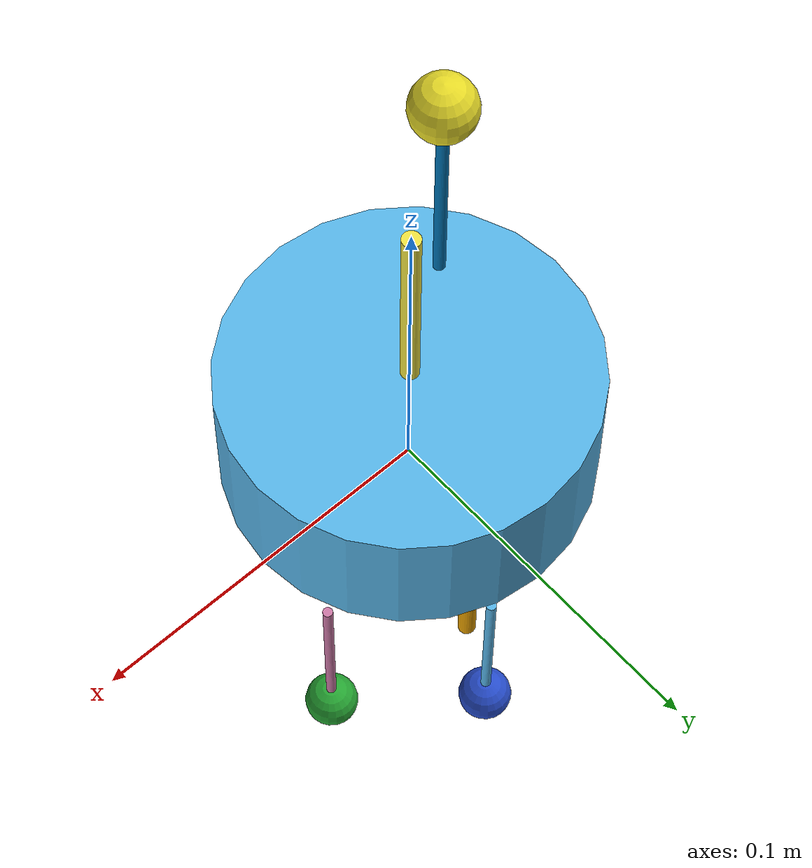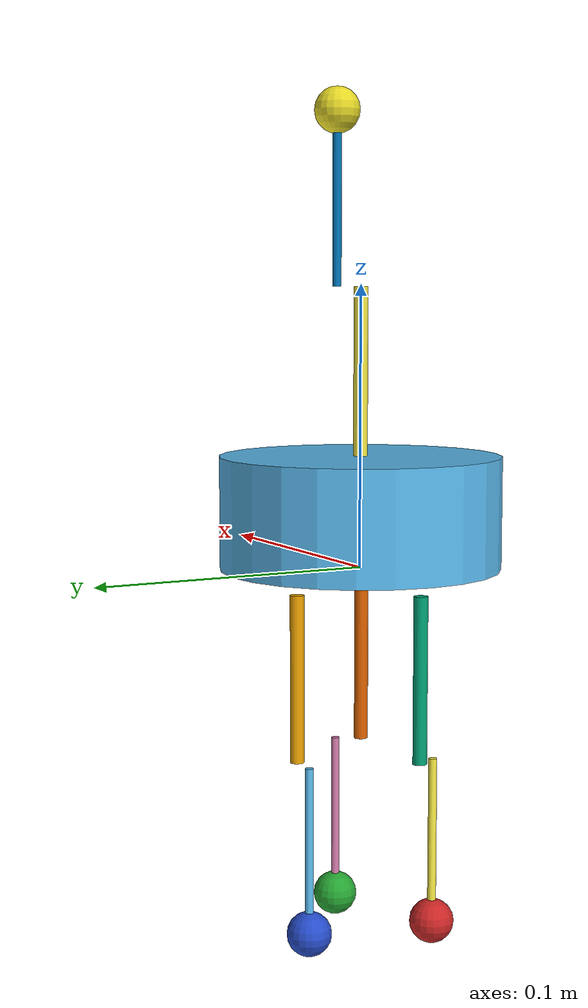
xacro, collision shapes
<?xml version="1.0"?>
<robot xmlns:xacro="http://www.ros.org/wiki/xacro" name="gurdy">

    <!-- Properties -->

    <xacro:property name="foot_kp" value="1000.0"/>
	<xacro:property name="foot_kd" value="1000.0"/>
	<xacro:property name="foot_mu1" value="10.0"/>
    <xacro:property name="foot_mu2" value="10.0"/>
    <xacro:property name="foot_radius" value="0.008"/>

    <!-- Head XACRO -->
    <xacro:macro name="gurdy_head" params="">

        <link name="base_link">
            <collision>
                <origin xyz="0 0 0" rpy="0 0 0"/>
                <geometry>
                    <box size="0.01 0.01 0.01"/>
                </geometry>
            </collision>
            <visual>
                <origin xyz="0 0 0.01" rpy="0 0 0"/>
                <geometry>
                    <box size="0.01 0.01 0.01"/>
                </geometry>
            </visual>
        </link>

        <link name="head_link">
            <inertial>
                <origin xyz="0 0 0.02" rpy="0 0 0"/>
                <mass value="0.01" />
                <xacro:cylinder_inertia mass="0.01" r="0.05" l="0.04"/>
            </inertial>
            <collision>
                <origin xyz="0 0 0.02" rpy="0 0 0"/>
                <geometry>
                    <cylinder radius="0.05" length="0.04"/>
                </geometry>
            </collision>
            <visual>
                <origin rpy="0.0 0 0" xyz="0 0 0"/>
                <geometry>
                    <mesh filename="package://my_gurdy_description/models/gurdy/meshes/gurdy_head_v2.dae"/>
                </geometry>
            </visual>
        </link>

        <gazebo reference="head_link">
            <mu1>10.0</mu1>
            <mu2>10.0</mu2>
        </gazebo>

        <joint name="fixed" type="fixed">
            <parent link="base_link"/>
            <child link="head_link"/>
        </joint>

    </xacro:macro>

    <!-- LEG-->

    <!-- MACROS -->
    <xacro:macro name="upperleg_link" params="number">
        <link name="upperleg_M${number}_link">
     	    <inertial>
                <origin xyz="0 0 0.03" rpy="0 0 0"/>
                <mass value="0.01" />
                <xacro:cylinder_inertia mass="0.01" r="0.0025" l="0.06"/>
            </inertial>
            <collision>
                <origin xyz="0 0 0.03" rpy="0 0 0"/>
                <geometry>
                    <cylinder length="0.06" radius="0.0025"/>
                </geometry>
            </collision>
            <visual>
                <origin rpy="0.0 0 0" xyz="0 0 0"/>
                <geometry>
                    <mesh filename="package://my_gurdy_description/models/gurdy/meshes/gurdy_higherleg_v2.dae"/>
                </geometry>
            </visual>
    	</link>
    </xacro:macro>

    <xacro:macro name="lowerleg_link" params="number">
        <link name="lowerleg_M${number}_link">
     	    <inertial>
                <origin xyz="0 0 0.03" rpy="0 0 0"/>
                <mass value="0.01" />
                <xacro:cylinder_inertia mass="0.01" r="0.0015" l="0.06"/>
            </inertial>
            <collision>
                <origin xyz="0 0 0.03" rpy="0 0 0"/>
                <geometry>
                    <cylinder length="0.06" radius="0.0015"/>
                </geometry>
            </collision>
            <visual>
                <origin rpy="0.0 0 0" xyz="0 0 0"/>
                <geometry>
                    <mesh filename="package://my_gurdy_description/models/gurdy/meshes/gurdy_lowerleg_v2.dae"/>
                </geometry>
            </visual>
    	</link>
        <joint name="upperlegM${number}_lowerlegM${number}_joint" type="revolute">
        	<parent link="upperleg_M${number}_link"/>
        	<child link="lowerleg_M${number}_link"/>
            <origin xyz="0 0.0095 0.06" rpy="0 0 3.14159"/>
            <limit lower="-2.9" upper="1.5708" effort="1.0" velocity="0.005"/>
            <axis xyz="0 1 0"/>
    	</joint>
    </xacro:macro>

    <xacro:macro name="foot_link" params="number colour">
        <link name="footM${number}_link">
     	    <inertial>
                <origin xyz="0 0 0" rpy="0 0 0"/>
                <mass value="0.01" />
                <xacro:sphere_inertia mass="0.01" r="${foot_radius}"/>
            </inertial>
            <collision>
                <origin xyz="0 0 0" rpy="0 0 0"/>
                <geometry>
                    <sphere radius="${foot_radius}"/>
                </geometry>
            </collision>
            <visual>
                <origin rpy="0.0 0 0" xyz="0 0 0"/>
                <geometry>
                    <sphere radius="${foot_radius}"/>
                </geometry>
            </visual>
    	</link>
        <gazebo reference="footM${number}_link">
            <kp>${foot_kp}</kp>
            <kd>${foot_kd}</kd>
            <mu1>${foot_mu1}</mu1>
            <mu2>${foot_mu2}</mu2>
            <material>Gazebo/${colour}</material>
        </gazebo>
        <joint name="basefoot_peg_M${number}_basefoot_peg_M${number}_joint_joint" type="fixed">
            <parent link="lowerleg_M${number}_link"/>
            <child link="footM${number}_link"/>
            <origin xyz="0 0 0.06" rpy="0 0 0"/>
        </joint>
    </xacro:macro>

    <xacro:macro name="upper_transmission" params="number">
        <transmission name="tran${number}">
            <type>transmission_interface/SimpleTransmission</type>
            <joint name="head_upperlegM${number}_joint">
                <hardwareInterface>EffortJointInterface</hardwareInterface>
            </joint>
            <actuator name="motor${number}">
                <hardwareInterface>EffortJointInterface</hardwareInterface>
                <mechanicalReduction>1</mechanicalReduction>
            </actuator>
        </transmission>
    </xacro:macro>

    <xacro:macro name="lower_transmission" params="number number_transm">

        <transmission name="tran${number_transm}">
            <type>transmission_interface/SimpleTransmission</type>
            <joint name="upperlegM${number}_lowerlegM${number}_joint">
                <hardwareInterface>EffortJointInterface</hardwareInterface>
            </joint>
            <actuator name="motor${number_transm}">
                <hardwareInterface>EffortJointInterface</hardwareInterface>
                <mechanicalReduction>1</mechanicalReduction>
            </actuator>
        </transmission>
    </xacro:macro>

    <xacro:macro name="gurdy_leg" params="headlink_name number colour *origin">

        <xacro:upperleg_link number="${number}"/>
        <xacro:upper_transmission number="${number}"/>

        <joint name="head_upperlegM${number}_joint" type="revolute">
            <parent link="${headlink_name}"/>
            <child link="upperleg_M${number}_link"/>

            <xacro:insert_block name="origin" />
            <limit lower="-1.55" upper="0.0" effort="1.0" velocity="0.005"/>
            <axis xyz="0 1 0"/>
        </joint>

        <xacro:lowerleg_link number="${number}"/>
        <xacro:lower_transmission number="${number}" number_transm="${number + 4}"/>

        <xacro:foot_link number="${number}" colour="${colour}"/>

    </xacro:macro>

    <xacro:macro name="gurdy_control" params="namespace">
        <gazebo>
            <plugin name="gazebo_ros_control" filename="libgazebo_ros_control.so">
                <robotNamespace>/${namespace}</robotNamespace>
            </plugin>
        </gazebo>

        <gazebo>
            <plugin name="gazebo_ros_imu_controller" filename="libgazebo_ros_imu.so">
            <robotNamespace>/${namespace}</robotNamespace>
            <topicName>imu/data</topicName>
            <serviceName>imu/service</serviceName>
            <bodyName>base_link</bodyName>
            <gaussianNoise>0</gaussianNoise>
            <rpyOffsets>0 0 0</rpyOffsets>
            <updateRate>5.0</updateRate>
            <alwaysOn>true</alwaysOn>
            <gaussianNoise>0</gaussianNoise>
            </plugin>
        </gazebo>

    </xacro:macro>

    <!-- Math Usefull MACROS-->
    <xacro:macro  name="cylinder_inertia" params="mass r l">
      <inertia  ixx="${mass*(3*r*r+l*l)/12}" ixy = "0" ixz = "0"
                iyy="${mass*(3*r*r+l*l)/12}" iyz = "0"
                izz="${mass*(r*r)/2}" />
    </xacro:macro >

    <xacro:macro name="box_inertia" params="mass x y z">
      <inertia  ixx="${mass*(y*y+z*z)/12}" ixy = "0" ixz = "0"
                iyy="${mass*(x*x+z*z)/12}" iyz = "0"
                izz="${mass*(x*x+z*z)/12}"
      />
    </xacro:macro>

    <xacro:macro name="sphere_inertia" params="mass r">
        <inertia
            ixx="${2*mass*r*r/5}" ixy = "0" ixz = "0"
            iyy="${2*mass*r*r/5}" iyz = "0"
            izz="${2*mass*r*r/5}"
        />
    </xacro:macro>

    <xacro:gurdy_head />

    <xacro:gurdy_leg headlink_name="head_link" number="1" colour="Red">
        <origin xyz="-0.02165 -0.0125 -0.008" rpy="3.14159 0 0.523599"/>
    </xacro:gurdy_leg>

    <xacro:gurdy_leg headlink_name="head_link" number="2" colour="Green">
        <origin xyz="0.02165 -0.0125 -0.008" rpy="3.14159 0 2.61799"/>
    </xacro:gurdy_leg>

    <xacro:gurdy_leg headlink_name="head_link" number="3" colour="Blue">
        <origin xyz="0 0.025 -0.008" rpy="3.14159 0 -1.5708"/>
    </xacro:gurdy_leg>

    <xacro:gurdy_leg headlink_name="head_link" number="4" colour="Yellow">
        <origin xyz="0 0 0.039162" rpy="0 0 0"/>
    </xacro:gurdy_leg>

    <xacro:gurdy_control namespace="gurdy"/>

</robot>
